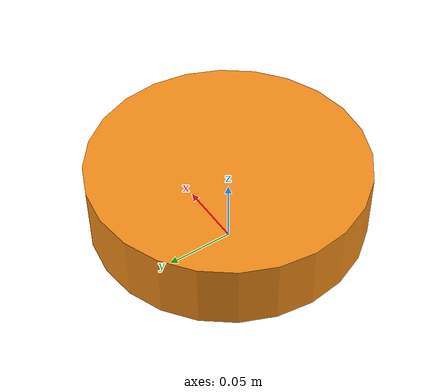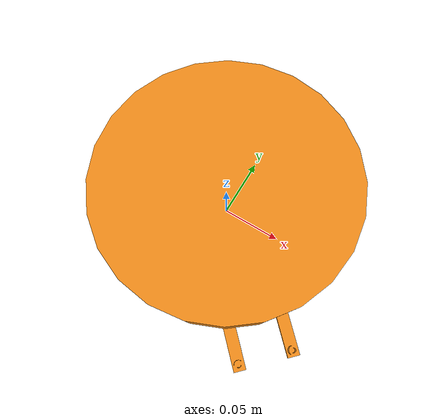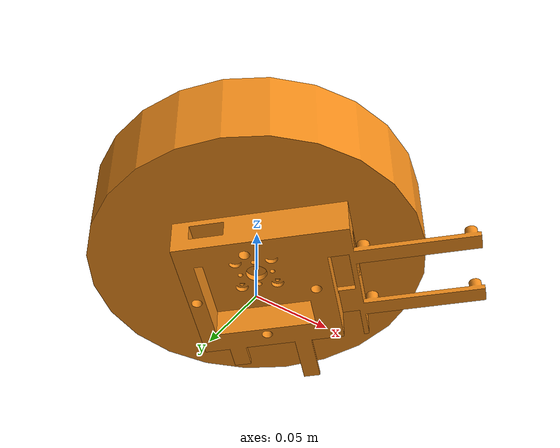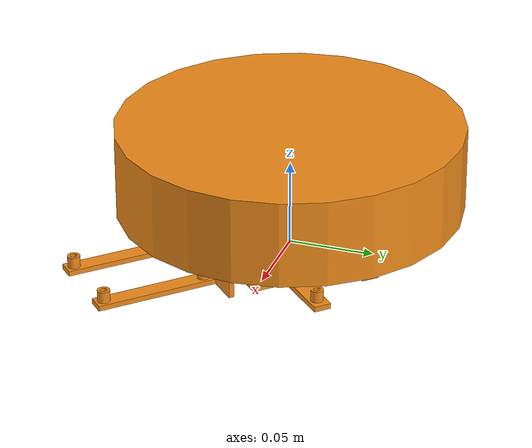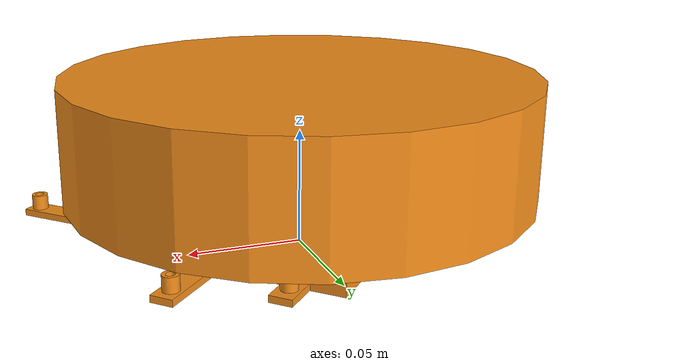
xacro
<?xml version="1.0"?>

<robot xmlns:xacro="http://www.ros.org/wiki/xacro" name="reaction_wheel">

  <!-- Enable setting arguments from the launch file -->
  <xacro:arg name="prefix" default="" />

  <!-- Import RW description -->
  <xacro:include filename="$(find rw_ros2_control)/urdf/rw.macro.xacro" />

  <!-- Import RW ros2 control description -->
  <xacro:include filename="$(find rw_ros2_control)/ros2_control/rw.ros2_control.xacro" />

  <!-- Used for fixing robot -->
  <link name="world"/>

  <!-- RW description -->
  <xacro:rw parent="world" prefix="$(arg prefix)">
    <origin xyz="0 0 0" rpy="0 0 0" />
  </xacro:rw>

  <!-- RW ros2 control description -->
  <xacro:rw_system name="RwSystem" prefix="$(arg prefix)"/>

</robot>

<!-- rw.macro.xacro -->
<robot xmlns:xacro="http://www.ros.org/wiki/xacro">

  <xacro:macro name="rw" params="parent prefix *origin">

  <joint name="${prefix}rw_base_joint" type="fixed">
    <xacro:insert_block name="origin" />
    <parent link="${parent}"/>
    <child link="${prefix}rw_base" />
  </joint>

  <!-- Base Link -->
  <link name="${prefix}rw_base">
    <collision>
      <origin xyz="0 0 0" rpy="0 0 0"/>
      <geometry>
        <mesh filename="package://rw_ros2_control/mesh/rw_base.stl" scale="1 1 1"/>
      </geometry>
    </collision>

    <visual>
      <origin xyz="0 0 0" rpy="0 0 0.785"/>
      <geometry>
        <mesh filename="package://rw_ros2_control/mesh/rw_base.stl" scale="1 1 1"/>
      </geometry>
      <material name="orange"/>
    </visual>

    <inertial>
      <origin xyz="0 0 0" rpy="0 0 0.785"/>
      <mass value="1.0"/>
      <inertia
        ixx="0.01" ixy="0.0" ixz="0.0"
        iyy="0.01" iyz="0.0"
        izz="0.01"/>
    </inertial>
  </link>

  <!-- Middle Link -->
  <link name="${prefix}rw_rotor">
    <collision>
      <origin xyz="0 0 0" rpy="0 0 0"/>
      <geometry>
        <cylinder radius="0.1" length="0.05"/>
      </geometry>
    </collision>

    <visual>
      <origin xyz="0 0 0" rpy="0 0 0"/>
      <geometry>
        <cylinder radius="0.1" length="0.05"/>
      </geometry>
      <material name="orange"/>
    </visual>

    <inertial>
      <origin xyz="0 0 0" rpy="0 0 0"/>
      <mass value="2.0"/>
      <inertia
        ixx="0.06" ixy="0.0" ixz="0.0"
        iyy="0.06" iyz="0.0"
        izz="0.1"/>
    </inertial>
  </link>

  <joint name="${prefix}rw_joint" type="revolute">
    <parent link="${prefix}rw_base"/>
    <child link="${prefix}rw_rotor"/>
    <origin xyz="0 0 0.05" rpy="0 0 0"/>
    <axis xyz="0 0 1"/>
    <limit effort="10.0" lower="-1e9" upper="1e9" velocity="100"/>
    <dynamics damping="0.5" friction="0.5"/>
  </joint>

  </xacro:macro>

</robot>
